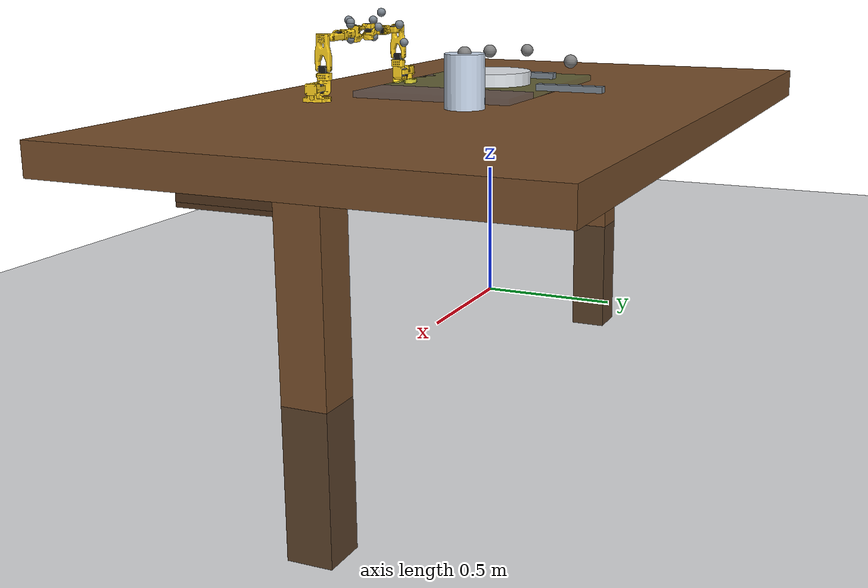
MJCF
<mujoco model="official_dual_so101_dinner_table">
  <compiler angle="radian" meshdir="../assets/so101/SO101/assets" autolimits="true" />
  <option timestep="0.005" gravity="0 0 -9.81" integrator="implicitfast" />
  <size njmax="1800" nconmax="1200" />
  <visual>
    <global offwidth="640" offheight="480" />
    <headlight ambient="0.35 0.35 0.35" diffuse="0.75 0.75 0.75" specular="0.2 0.2 0.2" />
    <rgba haze="0.15 0.18 0.22 1" />
  </visual>
  <default>
    <default class="so101_new_calib">
      <joint damping="1" frictionloss="0.1" armature="0.005" />
      <position kp="50" />
      <default class="visual">
        <geom type="mesh" contype="0" conaffinity="0" group="2" />
      </default>
      <default class="collision">
        <geom group="3" />
      </default>
    </default>
  </default>
  <default>
    <default class="sts3215">
      <geom contype="0" conaffinity="0" />
      <joint damping="0.60" frictionloss="0.052" armature="0.028" />
      <position kp="998.22" kv="2.731" forcerange="-2.94 2.94" />
    </default>
    <default class="backlash">
      <joint damping="0.01" frictionloss="0" armature="0.01" limited="true" range="-0.008726646259971648 0.008726646259971648" />
    </default>
  </default>
  <asset>
    <mesh file="waveshare_mounting_plate_so101_v2.stl" />
    <mesh file="sts3215_03a_v1.stl" />
    <mesh file="motor_holder_so101_base_v1.stl" />
    <mesh file="wrist_roll_follower_so101_v1.stl" />
    <mesh file="moving_jaw_so101_v1.stl" />
    <mesh file="base_motor_holder_so101_v1.stl" />
    <mesh file="upper_arm_so101_v1.stl" />
    <mesh file="wrist_roll_pitch_so101_v2.stl" />
    <mesh file="under_arm_so101_v1.stl" />
    <mesh file="rotation_pitch_so101_v1.stl" />
    <mesh file="motor_holder_so101_wrist_v1.stl" />
    <mesh file="sts3215_03a_no_horn_v1.stl" />
    <mesh file="base_so101_v2.stl" />
    <material name="base_motor_holder_so101_v1_material" rgba="1 0.82 0.12 1" />
    <material name="base_so101_v2_material" rgba="1 0.82 0.12 1" />
    <material name="sts3215_03a_v1_material" rgba="0.1 0.1 0.1 1" />
    <material name="waveshare_mounting_plate_so101_v2_material" rgba="1 0.82 0.12 1" />
    <material name="motor_holder_so101_base_v1_material" rgba="1 0.82 0.12 1" />
    <material name="rotation_pitch_so101_v1_material" rgba="1 0.82 0.12 1" />
    <material name="upper_arm_so101_v1_material" rgba="1 0.82 0.12 1" />
    <material name="under_arm_so101_v1_material" rgba="1 0.82 0.12 1" />
    <material name="motor_holder_so101_wrist_v1_material" rgba="1 0.82 0.12 1" />
    <material name="sts3215_03a_no_horn_v1_material" rgba="0.1 0.1 0.1 1.0" />
    <material name="wrist_roll_pitch_so101_v2_material" rgba="1 0.82 0.12 1" />
    <material name="wrist_roll_follower_so101_v1_material" rgba="1 0.82 0.12 1" />
    <material name="moving_jaw_so101_v1_material" rgba="1 0.82 0.12 1" />
    <material name="floor_mat" rgba="0.12 0.15 0.18 1" />
    <material name="table_mat" rgba="0.46 0.30 0.16 1" />
    <material name="drawer_mat" rgba="0.31 0.20 0.11 1" />
    <material name="metal_mat" rgba="0.48 0.52 0.56 1" />
    <material name="ceramic_mat" rgba="0.88 0.90 0.92 1" />
    <material name="cup_mat" rgba="0.80 0.86 0.94 1" />
    <material name="zone_clean_mat" rgba="0.15 0.65 0.42 0.22" />
    <material name="zone_place_mat" rgba="0.18 0.45 0.78 0.22" />
  </asset>
  <worldbody>
    <geom name="floor" type="plane" size="4 4 0.1" material="floor_mat" />
    <light name="key" pos="0 -1.5 3.6" dir="0 0 -1" diffuse="0.9 0.9 0.9" />
    <light name="fill" pos="-2 1 2" dir="0 0 -1" diffuse="0.35 0.42 0.5" />
    <camera name="overview" pos="0 -3.7 3.2" xyaxes="1 0 0 0 0.65 0.76" />
    <camera name="overhead" pos="0 -0.20 4.35" xyaxes="1 0 0 0 1 0" />
    <camera name="left_oblique" pos="-2.65 -2.95 2.55" xyaxes="0.74 -0.67 0 0.31 0.34 0.89" />
    <camera name="right_oblique" pos="2.65 -2.95 2.55" xyaxes="0.74 0.67 0 -0.31 0.34 0.89" />
    <body name="table" pos="0 0 0.72">
      <geom name="table_top" type="box" size="1.55 0.90 0.06" material="table_mat" mass="12" contype="2" conaffinity="2" />
      <geom name="table_leg_left" type="box" pos="-1.35 0 -0.62" size="0.08 0.08 0.62" material="table_mat" />
      <geom name="table_leg_right" type="box" pos="1.35 0 -0.62" size="0.08 0.08 0.62" material="table_mat" />
      <body name="drawer" pos="0 -0.70 -0.20">
        <joint name="drawer_slide" type="slide" axis="0 1 0" range="0 0.30" />
        <geom name="drawer_base" type="box" pos="0 0 -0.10" size="0.72 0.28 0.02" material="drawer_mat" mass="1.2" />
        <geom name="drawer_back" type="box" pos="0 0.25 0.01" size="0.72 0.03 0.11" material="drawer_mat" />
        <geom name="drawer_side_left" type="box" pos="-0.69 0 0.01" size="0.03 0.28 0.11" material="drawer_mat" />
        <geom name="drawer_side_right" type="box" pos="0.69 0 0.01" size="0.03 0.28 0.11" material="drawer_mat" />
        <geom name="drawer_handle" type="box" pos="0 0.29 0.02" size="0.18 0.025 0.025" material="metal_mat" />
        <site name="drawer_handle_site" pos="0 0.34 0.02" size="0.025" />
      </body>
    </body>
    <body name="clean_area" pos="-0.24 -0.10 0.81">
      <geom name="clean_area_geom" type="box" size="0.34 0.32 0.012" material="zone_clean_mat" contype="0" conaffinity="0" />
    </body>
    <body name="place_area" pos="0 -0.10 0.81">
      <geom name="place_area_geom" type="box" size="0.34 0.32 0.012" material="zone_place_mat" contype="0" conaffinity="0" />
    </body>
    <body name="plate" pos="0 0 0.86">
      <freejoint name="plate_free" />
      <geom name="plate_geom" type="cylinder" size="0.16 0.025" material="ceramic_mat" mass="0.22" contype="2" conaffinity="4" />
      <site name="plate_grasp_site" pos="0 0 0.10" size="0.025" />
    </body>
    <body name="cup" pos="0.35 0.05 0.88">
      <freejoint name="cup_free" />
      <geom name="cup_geom" type="cylinder" size="0.075 0.10" material="cup_mat" mass="0.18" contype="2" conaffinity="4" />
      <site name="cup_grasp_site" pos="0 0 0.10" size="0.025" />
    </body>
    <body name="fork" pos="-0.32 0.03 0.84">
      <freejoint name="fork_free" />
      <geom name="fork_geom" type="box" size="0.018 0.12 0.012" material="metal_mat" mass="0.05" contype="2" conaffinity="4" />
      <site name="fork_grasp_site" pos="0 0 0.10" size="0.025" />
    </body>
    <body name="spoon" pos="0.08 0.36 0.84">
      <freejoint name="spoon_free" />
      <geom name="spoon_geom" type="box" size="0.018 0.13 0.012" material="metal_mat" mass="0.05" contype="2" conaffinity="4" />
      <site name="spoon_grasp_site" pos="0 0 0.10" size="0.025" />
    </body>
    <body name="left_left_arm" pos="-0.30 -0.52 0.79" quat="1 0 0 0" childclass="so101_new_calib">
      <inertial pos="0.0137179 -5.19711e-05 0.0334843" mass="0.147" fullinertia="0.000114686 0.000136117 0.000130364 -4.59787e-07 4.97151e-06 9.75275e-08" />
      <geom type="mesh" class="visual" pos="-0.00636471 -9.94414e-05 -0.0024" quat="0.5 0.5 0.5 0.5" mesh="base_motor_holder_so101_v1" material="base_motor_holder_so101_v1_material" />
      <geom type="mesh" class="visual" pos="-0.00636471 -8.97657e-09 -0.0024" quat="0.5 0.5 0.5 0.5" mesh="base_so101_v2" material="base_so101_v2_material" />
      <geom type="mesh" class="visual" pos="0.0263353 -8.97657e-09 0.0437" quat="1 -2.85511e-16 -9.64433e-17 6.12908e-16" mesh="sts3215_03a_v1" material="sts3215_03a_v1_material" />
      <geom type="mesh" class="visual" pos="-0.0309827 -0.000199441 0.0474" quat="0.5 0.5 0.5 0.5" mesh="waveshare_mounting_plate_so101_v2" material="waveshare_mounting_plate_so101_v2_material" />
      <site group="3" name="left_base_site" pos="8.67362e-19 9.55596e-18 3.46945e-18" quat="1 -8.17396e-19 3.78392e-17 2.22045e-16" />
      <body name="left_shoulder" pos="0.0388353 -8.97657e-09 0.0624" quat="3.56167e-16 1.22818e-15 -1 -4.14635e-16">
        <joint axis="0 0 1" name="left_shoulder_pan" type="hinge" range="-1.9198621771937616 1.9198621771937634" class="sts3215" />
        <inertial pos="-0.0307604 -1.66727e-05 -0.0252713" mass="0.100006" fullinertia="8.3759e-05 8.10403e-05 2.39783e-05 7.55525e-08 -1.16342e-06 1.54663e-07" />
        <geom type="mesh" class="visual" pos="-0.0303992 0.000422241 -0.0417" quat="0.5 0.5 0.5 -0.5" mesh="sts3215_03a_v1" material="sts3215_03a_v1_material" />
        <geom type="mesh" class="collision" pos="-0.0303992 0.000422241 -0.0417" quat="0.5 0.5 0.5 -0.5" mesh="sts3215_03a_v1" material="sts3215_03a_v1_material" />
        <geom type="mesh" class="visual" pos="-0.0675992 -0.000177759 0.0158499" quat="0.5 0.5 -0.5 0.5" mesh="motor_holder_so101_base_v1" material="motor_holder_so101_base_v1_material" />
        <geom type="mesh" class="collision" pos="-0.0675992 -0.000177759 0.0158499" quat="0.5 0.5 -0.5 0.5" mesh="motor_holder_so101_base_v1" material="motor_holder_so101_base_v1_material" />
        <geom type="mesh" class="visual" pos="0.0122008 2.22413e-05 0.0464" quat="0.707107 -0.707107 -0 8.3163e-34" mesh="rotation_pitch_so101_v1" material="rotation_pitch_so101_v1_material" />
        <geom type="mesh" class="collision" pos="0.0122008 2.22413e-05 0.0464" quat="0.707107 -0.707107 -0 8.3163e-34" mesh="rotation_pitch_so101_v1" material="rotation_pitch_so101_v1_material" />
        <body name="left_upper_arm" pos="-0.0303992 -0.0182778 -0.0542" quat="0.5 -0.5 -0.5 -0.5">
          <joint axis="0 0 1" name="left_shoulder_lift" type="hinge" range="-1.7453292519943224 1.7453292519943366" class="sts3215" />
          <inertial pos="-0.0898471 -0.00838224 0.0184089" mass="0.103" fullinertia="4.08002e-05 0.000147318 0.000142487 -1.97819e-05 -4.03016e-08 8.97326e-09" />
          <geom type="mesh" class="visual" pos="-0.11257 -0.0155 0.0187" quat="4.56308e-16 -0.707107 0.707107 -1.37383e-16" mesh="sts3215_03a_v1" material="sts3215_03a_v1_material" />
          <geom type="mesh" class="collision" pos="-0.11257 -0.0155 0.0187" quat="4.56308e-16 -0.707107 0.707107 -1.37383e-16" mesh="sts3215_03a_v1" material="sts3215_03a_v1_material" />
          <geom type="mesh" class="visual" pos="-0.065085 0.012 0.0182" quat="0 1 0 0" mesh="upper_arm_so101_v1" material="upper_arm_so101_v1_material" />
          <geom type="mesh" class="collision" pos="-0.065085 0.012 0.0182" quat="0 1 0 0" mesh="upper_arm_so101_v1" material="upper_arm_so101_v1_material" />
          <body name="left_lower_arm" pos="-0.11257 -0.028 1.73763e-16" quat="0.707107 -5.98613e-17 -2.58051e-17 0.707107">
            <joint axis="0 0 1" name="left_elbow" type="hinge" range="-1.69 1.69" class="sts3215" />
            <inertial pos="-0.0980701 0.00324376 0.0182831" mass="0.104" fullinertia="2.87438e-05 0.000159844 0.00014529 7.41152e-06 1.26409e-06 -4.90188e-08" />
            <geom type="mesh" class="visual" pos="-0.0648499 -0.032 0.0182" quat="0 1 0 0" mesh="under_arm_so101_v1" material="under_arm_so101_v1_material" />
            <geom type="mesh" class="collision" pos="-0.0648499 -0.032 0.0182" quat="0 1 0 0" mesh="under_arm_so101_v1" material="under_arm_so101_v1_material" />
            <geom type="mesh" class="visual" pos="-0.0648499 -0.032 0.018" quat="3.92687e-16 -1 -1.9186e-15 -6.38378e-16" mesh="motor_holder_so101_wrist_v1" material="motor_holder_so101_wrist_v1_material" />
            <geom type="mesh" class="collision" pos="-0.0648499 -0.032 0.018" quat="3.92687e-16 -1 -1.9186e-15 -6.38378e-16" mesh="motor_holder_so101_wrist_v1" material="motor_holder_so101_wrist_v1_material" />
            <geom type="mesh" class="visual" pos="-0.1224 0.0052 0.0187" quat="7.21645e-16 1.56949e-15 1 -3.33067e-16" mesh="sts3215_03a_v1" material="sts3215_03a_v1_material" />
            <geom type="mesh" class="collision" pos="-0.1224 0.0052 0.0187" quat="7.21645e-16 1.56949e-15 1 -3.33067e-16" mesh="sts3215_03a_v1" material="sts3215_03a_v1_material" />
            <body name="left_wrist" pos="-0.1349 0.0052 3.62355e-17" quat="0.707107 9.58722e-16 -7.51313e-16 -0.707107">
              <joint axis="0 0 1" name="left_wrist_pitch" type="hinge" range="-1.6580628494556928 1.6580627293335335" class="sts3215" />
              <inertial pos="-0.000103312 -0.0386143 0.0281156" mass="0.079" fullinertia="3.68263e-05 2.5391e-05 2.1e-05 1.7893e-08 -5.28128e-08 3.6412e-06" />
              <geom type="mesh" class="visual" pos="8.32667e-17 -0.0424 0.0306" quat="0.5 0.5 0.5 -0.5" mesh="sts3215_03a_no_horn_v1" material="sts3215_03a_no_horn_v1_material" />
              <geom type="mesh" class="collision" pos="8.32667e-17 -0.0424 0.0306" quat="0.5 0.5 0.5 -0.5" mesh="sts3215_03a_no_horn_v1" material="sts3215_03a_no_horn_v1_material" />
              <geom type="mesh" class="visual" pos="0 -0.028 0.0181" quat="0.5 -0.5 -0.5 -0.5" mesh="wrist_roll_pitch_so101_v2" material="wrist_roll_pitch_so101_v2_material" />
              <geom type="mesh" class="collision" pos="0 -0.028 0.0181" quat="0.5 -0.5 -0.5 -0.5" mesh="wrist_roll_pitch_so101_v2" material="wrist_roll_pitch_so101_v2_material" />
              <body name="left_gripper" pos="5.55112e-17 -0.0611 0.0181" quat="0.0172091 -0.0172091 0.706897 0.706897">
                <joint axis="0 0 1" name="left_wrist_roll" type="hinge" range="-2.7438472969992493 2.841206309382605" class="sts3215" />
                <inertial pos="0.000213627 0.000245138 -0.025187" mass="0.087" fullinertia="2.75087e-05 4.33657e-05 3.45059e-05 -3.35241e-07 -5.7352e-06 -5.17847e-08" />
                <geom type="mesh" class="visual" pos="0.0077 0.0001 -0.0234" quat="0.707107 -0.707107 1.66015e-15 6.45094e-15" mesh="sts3215_03a_v1" material="sts3215_03a_v1_material" />
                <geom type="mesh" class="collision" pos="0.0077 0.0001 -0.0234" quat="0.707107 -0.707107 1.66015e-15 6.45094e-15" mesh="sts3215_03a_v1" material="sts3215_03a_v1_material" />
                <geom type="mesh" class="visual" pos="8.32667e-17 -0.000218214 0.000949706" quat="0 1 0 0" mesh="wrist_roll_follower_so101_v1" material="wrist_roll_follower_so101_v1_material" />
                <site group="3" name="left_grasp_site" pos="-0.0079 -0.000218121 -0.0981274" quat="0.707107 -0 0.707107 -2.37788e-17" />
                <body name="left_moving_jaw_so101_v1" pos="0.0202 0.0188 -0.0234" quat="0.707107 0.707107 -1.85362e-08 1.85362e-08">
                  <joint axis="0 0 1" name="left_gripper" type="hinge" range="-0.17453297762778586 1.7453291995659765" class="sts3215" />
                  <inertial pos="-0.00157495 -0.0300244 0.0192755" mass="0.012" fullinertia="6.61427e-06 1.89032e-06 5.28738e-06 -3.19807e-07 -5.90717e-09 -1.09945e-07" />
                  <geom type="mesh" class="visual" pos="-5.55112e-17 -5.55112e-17 0.0189" quat="1 -0 3.00524e-16 -2.00834e-17" mesh="moving_jaw_so101_v1" material="moving_jaw_so101_v1_material" />
                  <geom name="left_moving_jaw_mesh_collision" type="mesh" class="collision" contype="0" conaffinity="0" pos="-5.55112e-17 -5.55112e-17 0.0189" quat="1 -0 3.00524e-16 -2.00834e-17" mesh="moving_jaw_so101_v1" material="moving_jaw_so101_v1_material" />
                  <geom name="left_moving_finger_geom" type="sphere" contype="4" conaffinity="4" pos="-0.01746 0.02139 0.03281" material="metal_mat" size="0.017" friction="2.0 0.04 0.02" />
                  <geom name="left_plate_moving_finger_geom" type="sphere" contype="0" conaffinity="4" pos="-0.04438 0.0164 0.0095" material="metal_mat" size="0.017" friction="2.0 0.04 0.02" />
                  <geom name="left_cup_moving_finger_geom" type="sphere" contype="0" conaffinity="4" pos="0.0028 -0.0126 -0.1254" material="metal_mat" size="0.017" friction="2.0 0.04 0.02" />
                </body>
                <geom name="left_gripper_mesh_collision" type="mesh" class="collision" contype="0" conaffinity="0" pos="8.32667e-17 -0.000218214 0.000949706" quat="0 1 0 0" mesh="wrist_roll_follower_so101_v1" material="wrist_roll_follower_so101_v1_material" />
                <geom name="left_fixed_finger_geom" type="sphere" contype="4" conaffinity="4" pos="0.01475 0.03269 -0.00697" material="metal_mat" size="0.017" friction="2.0 0.04 0.02" />
                <geom name="left_plate_fixed_finger_geom" type="sphere" contype="0" conaffinity="4" pos="0.0421 0.0093 -0.0018" material="metal_mat" size="0.017" friction="2.0 0.04 0.02" />
                <geom name="left_cup_fixed_finger_geom" type="sphere" contype="0" conaffinity="4" pos="-0.0548 0.0985 0.0828" material="metal_mat" size="0.017" friction="2.0 0.04 0.02" />
                <site group="3" name="left_pinch_site" pos="0.0101 0.0093 -0.0018" quat="0.707107 -0 0.707107 -2.37788e-17" size="0.012" />
              </body>
            </body>
          </body>
        </body>
      </body>
    </body>
    <body name="right_right_arm" pos="0.45 -0.52 0.79" quat="0 0 0 1" childclass="so101_new_calib">
      <inertial pos="0.0137179 -5.19711e-05 0.0334843" mass="0.147" fullinertia="0.000114686 0.000136117 0.000130364 -4.59787e-07 4.97151e-06 9.75275e-08" />
      <geom type="mesh" class="visual" pos="-0.00636471 -9.94414e-05 -0.0024" quat="0.5 0.5 0.5 0.5" mesh="base_motor_holder_so101_v1" material="base_motor_holder_so101_v1_material" />
      <geom type="mesh" class="visual" pos="-0.00636471 -8.97657e-09 -0.0024" quat="0.5 0.5 0.5 0.5" mesh="base_so101_v2" material="base_so101_v2_material" />
      <geom type="mesh" class="visual" pos="0.0263353 -8.97657e-09 0.0437" quat="1 -2.85511e-16 -9.64433e-17 6.12908e-16" mesh="sts3215_03a_v1" material="sts3215_03a_v1_material" />
      <geom type="mesh" class="visual" pos="-0.0309827 -0.000199441 0.0474" quat="0.5 0.5 0.5 0.5" mesh="waveshare_mounting_plate_so101_v2" material="waveshare_mounting_plate_so101_v2_material" />
      <site group="3" name="right_base_site" pos="8.67362e-19 9.55596e-18 3.46945e-18" quat="1 -8.17396e-19 3.78392e-17 2.22045e-16" />
      <body name="right_shoulder" pos="0.0388353 -8.97657e-09 0.0624" quat="3.56167e-16 1.22818e-15 -1 -4.14635e-16">
        <joint axis="0 0 1" name="right_shoulder_pan" type="hinge" range="-1.9198621771937616 1.9198621771937634" class="sts3215" />
        <inertial pos="-0.0307604 -1.66727e-05 -0.0252713" mass="0.100006" fullinertia="8.3759e-05 8.10403e-05 2.39783e-05 7.55525e-08 -1.16342e-06 1.54663e-07" />
        <geom type="mesh" class="visual" pos="-0.0303992 0.000422241 -0.0417" quat="0.5 0.5 0.5 -0.5" mesh="sts3215_03a_v1" material="sts3215_03a_v1_material" />
        <geom type="mesh" class="collision" pos="-0.0303992 0.000422241 -0.0417" quat="0.5 0.5 0.5 -0.5" mesh="sts3215_03a_v1" material="sts3215_03a_v1_material" />
        <geom type="mesh" class="visual" pos="-0.0675992 -0.000177759 0.0158499" quat="0.5 0.5 -0.5 0.5" mesh="motor_holder_so101_base_v1" material="motor_holder_so101_base_v1_material" />
        <geom type="mesh" class="collision" pos="-0.0675992 -0.000177759 0.0158499" quat="0.5 0.5 -0.5 0.5" mesh="motor_holder_so101_base_v1" material="motor_holder_so101_base_v1_material" />
        <geom type="mesh" class="visual" pos="0.0122008 2.22413e-05 0.0464" quat="0.707107 -0.707107 -0 8.3163e-34" mesh="rotation_pitch_so101_v1" material="rotation_pitch_so101_v1_material" />
        <geom type="mesh" class="collision" pos="0.0122008 2.22413e-05 0.0464" quat="0.707107 -0.707107 -0 8.3163e-34" mesh="rotation_pitch_so101_v1" material="rotation_pitch_so101_v1_material" />
        <body name="right_upper_arm" pos="-0.0303992 -0.0182778 -0.0542" quat="0.5 -0.5 -0.5 -0.5">
          <joint axis="0 0 1" name="right_shoulder_lift" type="hinge" range="-1.7453292519943224 1.7453292519943366" class="sts3215" />
          <inertial pos="-0.0898471 -0.00838224 0.0184089" mass="0.103" fullinertia="4.08002e-05 0.000147318 0.000142487 -1.97819e-05 -4.03016e-08 8.97326e-09" />
          <geom type="mesh" class="visual" pos="-0.11257 -0.0155 0.0187" quat="4.56308e-16 -0.707107 0.707107 -1.37383e-16" mesh="sts3215_03a_v1" material="sts3215_03a_v1_material" />
          <geom type="mesh" class="collision" pos="-0.11257 -0.0155 0.0187" quat="4.56308e-16 -0.707107 0.707107 -1.37383e-16" mesh="sts3215_03a_v1" material="sts3215_03a_v1_material" />
          <geom type="mesh" class="visual" pos="-0.065085 0.012 0.0182" quat="0 1 0 0" mesh="upper_arm_so101_v1" material="upper_arm_so101_v1_material" />
          <geom type="mesh" class="collision" pos="-0.065085 0.012 0.0182" quat="0 1 0 0" mesh="upper_arm_so101_v1" material="upper_arm_so101_v1_material" />
          <body name="right_lower_arm" pos="-0.11257 -0.028 1.73763e-16" quat="0.707107 -5.98613e-17 -2.58051e-17 0.707107">
            <joint axis="0 0 1" name="right_elbow" type="hinge" range="-1.69 1.69" class="sts3215" />
            <inertial pos="-0.0980701 0.00324376 0.0182831" mass="0.104" fullinertia="2.87438e-05 0.000159844 0.00014529 7.41152e-06 1.26409e-06 -4.90188e-08" />
            <geom type="mesh" class="visual" pos="-0.0648499 -0.032 0.0182" quat="0 1 0 0" mesh="under_arm_so101_v1" material="under_arm_so101_v1_material" />
            <geom type="mesh" class="collision" pos="-0.0648499 -0.032 0.0182" quat="0 1 0 0" mesh="under_arm_so101_v1" material="under_arm_so101_v1_material" />
            <geom type="mesh" class="visual" pos="-0.0648499 -0.032 0.018" quat="3.92687e-16 -1 -1.9186e-15 -6.38378e-16" mesh="motor_holder_so101_wrist_v1" material="motor_holder_so101_wrist_v1_material" />
            <geom type="mesh" class="collision" pos="-0.0648499 -0.032 0.018" quat="3.92687e-16 -1 -1.9186e-15 -6.38378e-16" mesh="motor_holder_so101_wrist_v1" material="motor_holder_so101_wrist_v1_material" />
            <geom type="mesh" class="visual" pos="-0.1224 0.0052 0.0187" quat="7.21645e-16 1.56949e-15 1 -3.33067e-16" mesh="sts3215_03a_v1" material="sts3215_03a_v1_material" />
            <geom type="mesh" class="collision" pos="-0.1224 0.0052 0.0187" quat="7.21645e-16 1.56949e-15 1 -3.33067e-16" mesh="sts3215_03a_v1" material="sts3215_03a_v1_material" />
            <body name="right_wrist" pos="-0.1349 0.0052 3.62355e-17" quat="0.707107 9.58722e-16 -7.51313e-16 -0.707107">
              <joint axis="0 0 1" name="right_wrist_pitch" type="hinge" range="-1.6580628494556928 1.6580627293335335" class="sts3215" />
              <inertial pos="-0.000103312 -0.0386143 0.0281156" mass="0.079" fullinertia="3.68263e-05 2.5391e-05 2.1e-05 1.7893e-08 -5.28128e-08 3.6412e-06" />
              <geom type="mesh" class="visual" pos="8.32667e-17 -0.0424 0.0306" quat="0.5 0.5 0.5 -0.5" mesh="sts3215_03a_no_horn_v1" material="sts3215_03a_no_horn_v1_material" />
              <geom type="mesh" class="collision" pos="8.32667e-17 -0.0424 0.0306" quat="0.5 0.5 0.5 -0.5" mesh="sts3215_03a_no_horn_v1" material="sts3215_03a_no_horn_v1_material" />
              <geom type="mesh" class="visual" pos="0 -0.028 0.0181" quat="0.5 -0.5 -0.5 -0.5" mesh="wrist_roll_pitch_so101_v2" material="wrist_roll_pitch_so101_v2_material" />
              <geom type="mesh" class="collision" pos="0 -0.028 0.0181" quat="0.5 -0.5 -0.5 -0.5" mesh="wrist_roll_pitch_so101_v2" material="wrist_roll_pitch_so101_v2_material" />
              <body name="right_gripper" pos="5.55112e-17 -0.0611 0.0181" quat="0.0172091 -0.0172091 0.706897 0.706897">
                <joint axis="0 0 1" name="right_wrist_roll" type="hinge" range="-2.7438472969992493 2.841206309382605" class="sts3215" />
                <inertial pos="0.000213627 0.000245138 -0.025187" mass="0.087" fullinertia="2.75087e-05 4.33657e-05 3.45059e-05 -3.35241e-07 -5.7352e-06 -5.17847e-08" />
                <geom type="mesh" class="visual" pos="0.0077 0.0001 -0.0234" quat="0.707107 -0.707107 1.66015e-15 6.45094e-15" mesh="sts3215_03a_v1" material="sts3215_03a_v1_material" />
                <geom type="mesh" class="collision" pos="0.0077 0.0001 -0.0234" quat="0.707107 -0.707107 1.66015e-15 6.45094e-15" mesh="sts3215_03a_v1" material="sts3215_03a_v1_material" />
                <geom type="mesh" class="visual" pos="8.32667e-17 -0.000218214 0.000949706" quat="0 1 0 0" mesh="wrist_roll_follower_so101_v1" material="wrist_roll_follower_so101_v1_material" />
                <site group="3" name="right_grasp_site" pos="-0.0079 -0.000218121 -0.0981274" quat="0.707107 -0 0.707107 -2.37788e-17" />
                <body name="right_moving_jaw_so101_v1" pos="0.0202 0.0188 -0.0234" quat="0.707107 0.707107 -1.85362e-08 1.85362e-08">
                  <joint axis="0 0 1" name="right_gripper" type="hinge" range="-0.17453297762778586 1.7453291995659765" class="sts3215" />
                  <inertial pos="-0.00157495 -0.0300244 0.0192755" mass="0.012" fullinertia="6.61427e-06 1.89032e-06 5.28738e-06 -3.19807e-07 -5.90717e-09 -1.09945e-07" />
                  <geom type="mesh" class="visual" pos="-5.55112e-17 -5.55112e-17 0.0189" quat="1 -0 3.00524e-16 -2.00834e-17" mesh="moving_jaw_so101_v1" material="moving_jaw_so101_v1_material" />
                  <geom name="right_moving_jaw_mesh_collision" type="mesh" class="collision" contype="0" conaffinity="0" pos="-5.55112e-17 -5.55112e-17 0.0189" quat="1 -0 3.00524e-16 -2.00834e-17" mesh="moving_jaw_so101_v1" material="moving_jaw_so101_v1_material" />
                  <geom name="right_moving_finger_geom" type="sphere" contype="4" conaffinity="4" pos="-0.0373 0.0154 0.0095" material="metal_mat" size="0.017" friction="2.0 0.04 0.02" />
                  <geom name="right_plate_moving_finger_geom" type="sphere" contype="0" conaffinity="4" pos="-0.04438 0.0164 0.0095" material="metal_mat" size="0.017" friction="2.0 0.04 0.02" />
                  <geom name="right_cup_moving_finger_geom" type="sphere" contype="0" conaffinity="4" pos="0.0574 -0.1189 0.0696" material="metal_mat" size="0.017" friction="2.0 0.04 0.02" />
                </body>
                <geom name="right_gripper_mesh_collision" type="mesh" class="collision" contype="0" conaffinity="0" pos="8.32667e-17 -0.000218214 0.000949706" quat="0 1 0 0" mesh="wrist_roll_follower_so101_v1" material="wrist_roll_follower_so101_v1_material" />
                <geom name="right_fixed_finger_geom" type="sphere" contype="4" conaffinity="4" pos="0.0341 0.0093 -0.0018" material="metal_mat" size="0.017" friction="2.0 0.04 0.02" />
                <geom name="right_plate_fixed_finger_geom" type="sphere" contype="0" conaffinity="4" pos="0.0421 0.0093 -0.0018" material="metal_mat" size="0.017" friction="2.0 0.04 0.02" />
                <geom name="right_cup_fixed_finger_geom" type="sphere" contype="0" conaffinity="4" pos="0.0365 0.09665 -0.1415" material="metal_mat" size="0.017" friction="2.0 0.04 0.02" />
                <site group="3" name="right_pinch_site" pos="0.0101 0.0093 -0.0018" quat="0.707107 -0 0.707107 -2.37788e-17" size="0.012" />
              </body>
            </body>
          </body>
        </body>
      </body>
    </body>
  </worldbody>
  <actuator>
    <position name="drawer_position" joint="drawer_slide" ctrlrange="0 0.30" kp="450" forcerange="-120 120" />
    <position class="sts3215" name="left_shoulder_pan_motor" joint="left_shoulder_pan" forcerange="-3.35 3.35" ctrlrange="-1.91986 1.91986" />
    <position class="sts3215" name="left_shoulder_lift_motor" joint="left_shoulder_lift" forcerange="-3.35 3.35" ctrlrange="-1.74533 1.74533" />
    <position class="sts3215" name="left_elbow_motor" joint="left_elbow" forcerange="-3.35 3.35" ctrlrange="-1.69 1.69" />
    <position class="sts3215" name="left_wrist_pitch_motor" joint="left_wrist_pitch" forcerange="-3.35 3.35" ctrlrange="-1.65806 1.65806" />
    <position class="sts3215" name="left_wrist_roll_motor" joint="left_wrist_roll" forcerange="-3.35 3.35" ctrlrange="-2.74385 2.84121" />
    <position class="sts3215" name="left_gripper_motor" joint="left_gripper" forcerange="-3.35 3.35" ctrlrange="-0.17453 1.74533" />
    <position class="sts3215" name="right_shoulder_pan_motor" joint="right_shoulder_pan" forcerange="-3.35 3.35" ctrlrange="-1.91986 1.91986" />
    <position class="sts3215" name="right_shoulder_lift_motor" joint="right_shoulder_lift" forcerange="-3.35 3.35" ctrlrange="-1.74533 1.74533" />
    <position class="sts3215" name="right_elbow_motor" joint="right_elbow" forcerange="-3.35 3.35" ctrlrange="-1.69 1.69" />
    <position class="sts3215" name="right_wrist_pitch_motor" joint="right_wrist_pitch" forcerange="-3.35 3.35" ctrlrange="-1.65806 1.65806" />
    <position class="sts3215" name="right_wrist_roll_motor" joint="right_wrist_roll" forcerange="-3.35 3.35" ctrlrange="-2.74385 2.84121" />
    <position class="sts3215" name="right_gripper_motor" joint="right_gripper" forcerange="-3.35 3.35" ctrlrange="-0.17453 1.74533" />
  </actuator>
  <equality>
    <weld name="left_plate_retention" body1="left_gripper" body2="plate" active="false" relpose="0 0 0 1 0 0 0" solref="0.025 1" solimp="0.90 0.98 0.001" />
    <weld name="left_cup_retention" body1="left_gripper" body2="cup" active="false" relpose="0 0 0 1 0 0 0" solref="0.025 1" solimp="0.90 0.98 0.001" />
    <weld name="left_fork_retention" body1="left_gripper" body2="fork" active="false" relpose="0 0 0 1 0 0 0" solref="0.025 1" solimp="0.90 0.98 0.001" />
    <weld name="left_spoon_retention" body1="left_gripper" body2="spoon" active="false" relpose="0 0 0 1 0 0 0" solref="0.025 1" solimp="0.90 0.98 0.001" />
    <weld name="right_plate_retention" body1="right_gripper" body2="plate" active="false" relpose="0 0 0 1 0 0 0" solref="0.025 1" solimp="0.90 0.98 0.001" />
    <weld name="right_cup_retention" body1="right_gripper" body2="cup" active="false" relpose="0 0 0 1 0 0 0" solref="0.025 1" solimp="0.90 0.98 0.001" />
    <weld name="right_fork_retention" body1="right_gripper" body2="fork" active="false" relpose="0 0 0 1 0 0 0" solref="0.025 1" solimp="0.90 0.98 0.001" />
    <weld name="right_spoon_retention" body1="right_gripper" body2="spoon" active="false" relpose="0 0 0 1 0 0 0" solref="0.025 1" solimp="0.90 0.98 0.001" />
    <weld name="drawer_fork_stow" body1="drawer" body2="fork" active="false" relpose="0 0 0 1 0 0 0" solref="0.025 1" solimp="0.90 0.98 0.001" />
    <weld name="drawer_spoon_stow" body1="drawer" body2="spoon" active="false" relpose="0 0 0 1 0 0 0" solref="0.025 1" solimp="0.90 0.98 0.001" />
  </equality>
</mujoco>
